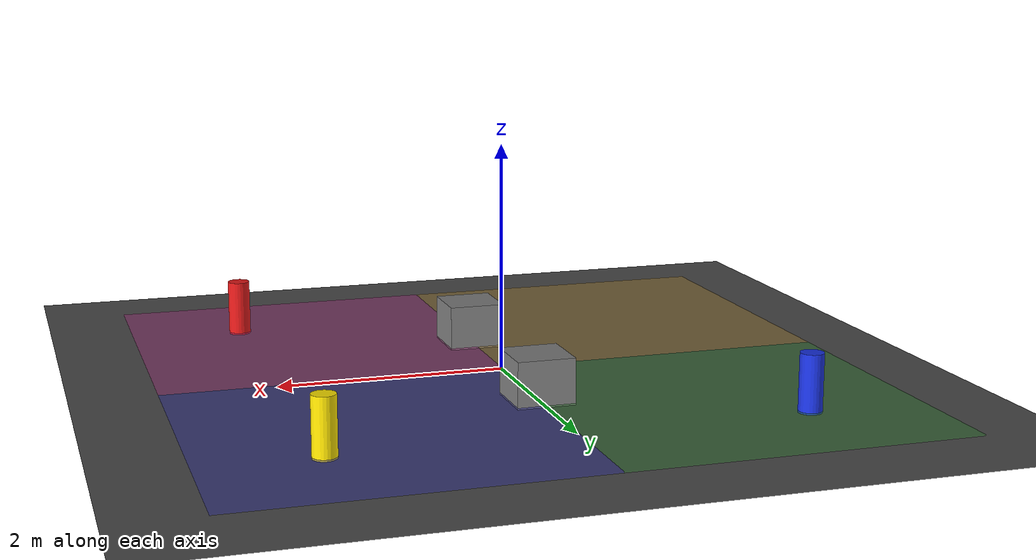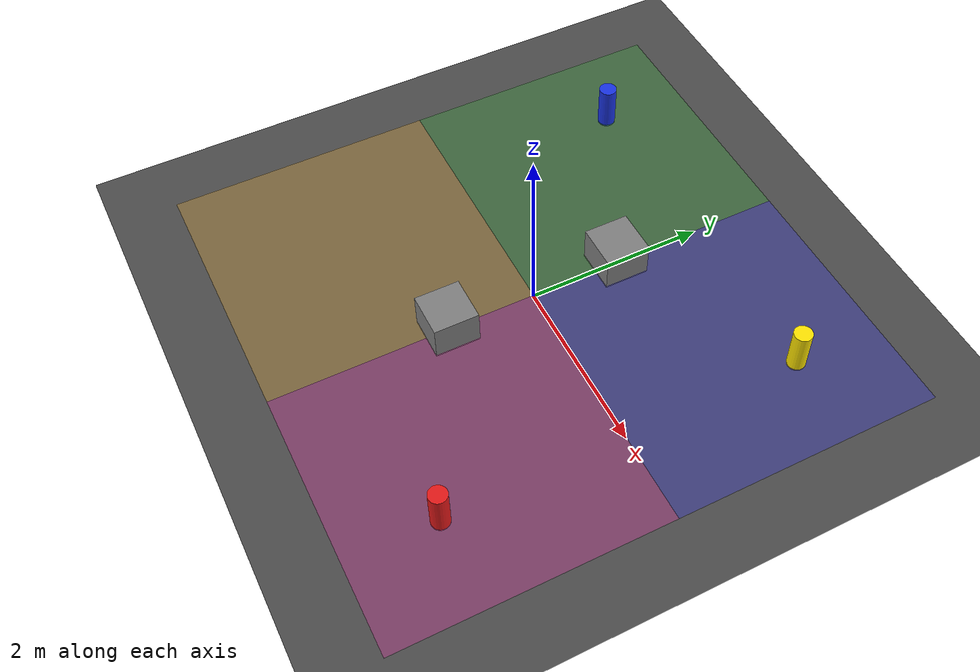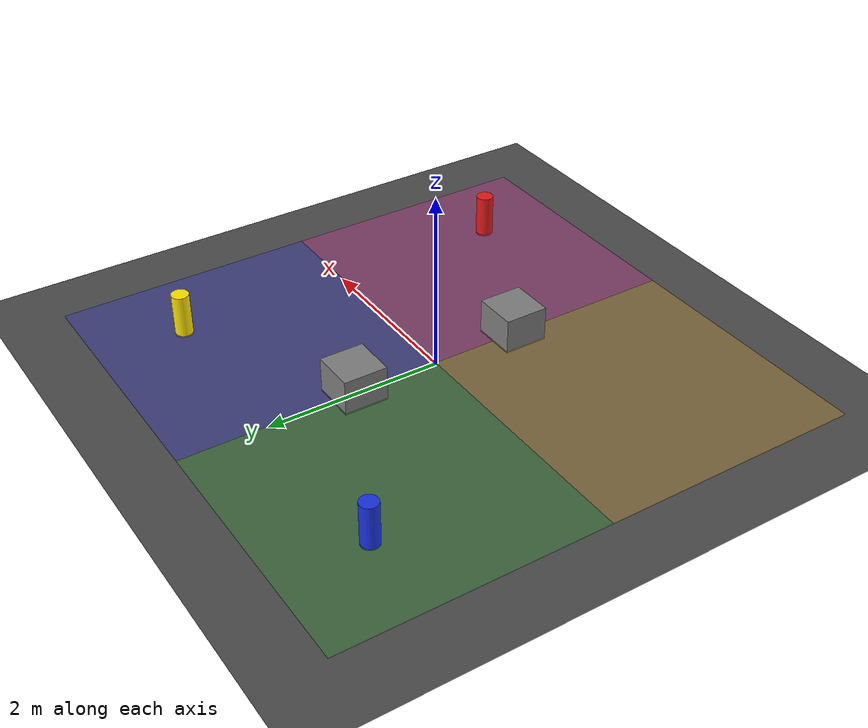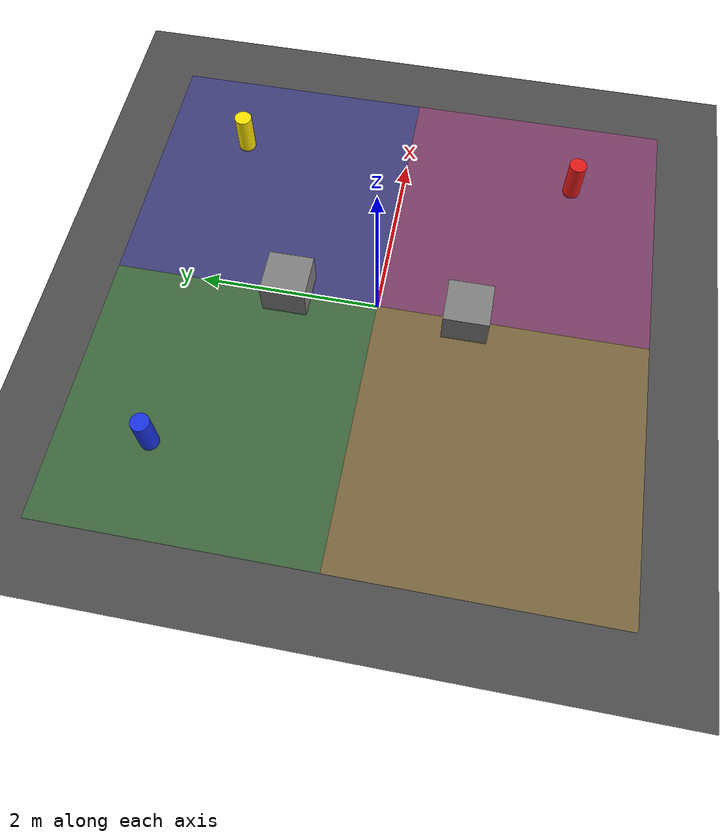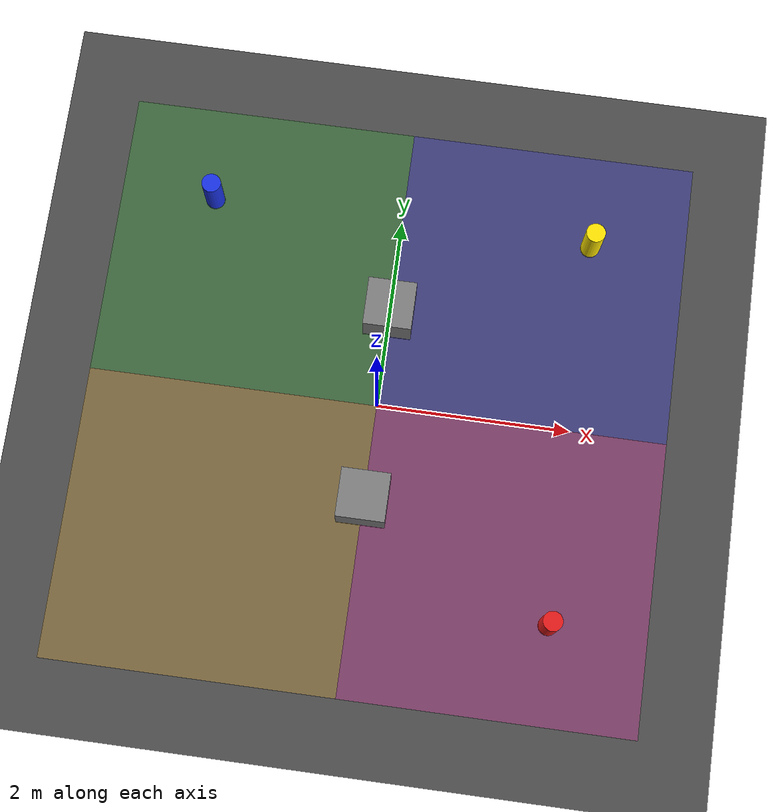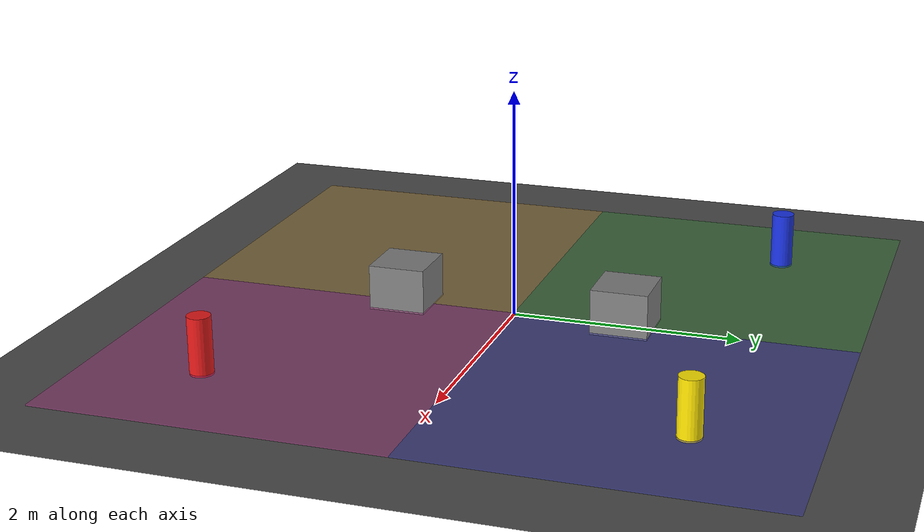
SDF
<?xml version="1.0" ?>
<sdf version="1.9" xmlns:experimental="http://sdformat.org/schemas/experimental">
  <world name="nexus_arena">

    <!-- Physics -->
    <physics name="1ms" type="bullet-featherstone">
      <max_step_size>0.001</max_step_size>
      <real_time_factor>1.0</real_time_factor>
    </physics>

    <!-- Plugins -->
    <plugin filename="gz-sim-physics-system"
            name="gz::sim::systems::Physics"/>
    <plugin filename="gz-sim-scene-broadcaster-system"
            name="gz::sim::systems::SceneBroadcaster"/>
    <plugin filename="gz-sim-user-commands-system"
            name="gz::sim::systems::UserCommands"/>
    <plugin filename="gz-sim-sensors-system"
            name="gz::sim::systems::Sensors">
      <render_engine>ogre2</render_engine>
    </plugin>

    <!-- Ground plane -->
    <model name="ground_plane">
      <static>true</static>
      <link name="link">
        <collision name="collision">
          <geometry><plane><normal>0 0 1</normal><size>20 20</size></plane></geometry>
        </collision>
        <visual name="visual">
          <geometry><plane><normal>0 0 1</normal><size>20 20</size></plane></geometry>
          <material>
            <ambient>0.3 0.3 0.3 1</ambient>
            <diffuse>0.3 0.3 0.3 1</diffuse>
          </material>
        </visual>
      </link>
    </model>

    <!-- ── ZONE FLOORS 6x6m arena ── -->
    <model name="zone_A">
      <static>true</static><pose>-1.5 1.5 0.01 0 0 0</pose>
      <link name="link">
        <visual name="v">
          <geometry><box><size>3 3 0.01</size></box></geometry>
          <material><ambient>0.2 0.6 0.2 0.4</ambient><diffuse>0.2 0.6 0.2 0.4</diffuse></material>
        </visual>
      </link>
    </model>
    <model name="zone_B">
      <static>true</static><pose>1.5 1.5 0.01 0 0 0</pose>
      <link name="link">
        <visual name="v">
          <geometry><box><size>3 3 0.01</size></box></geometry>
          <material><ambient>0.2 0.2 0.8 0.4</ambient><diffuse>0.2 0.2 0.8 0.4</diffuse></material>
        </visual>
      </link>
    </model>
    <model name="zone_C">
      <static>true</static><pose>-1.5 -1.5 0.01 0 0 0</pose>
      <link name="link">
        <visual name="v">
          <geometry><box><size>3 3 0.01</size></box></geometry>
          <material><ambient>0.8 0.6 0.2 0.4</ambient><diffuse>0.8 0.6 0.2 0.4</diffuse></material>
        </visual>
      </link>
    </model>
    <model name="zone_D">
      <static>true</static><pose>1.5 -1.5 0.01 0 0 0</pose>
      <link name="link">
        <visual name="v">
          <geometry><box><size>3 3 0.01</size></box></geometry>
          <material><ambient>0.8 0.2 0.6 0.4</ambient><diffuse>0.8 0.2 0.6 0.4</diffuse></material>
        </visual>
      </link>
    </model>

    <!-- ── COLORED MARKERS (cylinders h=0.5m r=0.1m) ── -->
    <!-- Yellow — Zone B corner (EmbodiedGPT target) -->
    <model name="marker_yellow">
      <static>true</static><pose>2.0 2.0 0.25 0 0 0</pose>
      <link name="link">
        <collision name="col">
          <geometry><cylinder><radius>0.1</radius><length>0.5</length></cylinder></geometry>
        </collision>
        <visual name="vis">
          <geometry><cylinder><radius>0.1</radius><length>0.5</length></cylinder></geometry>
          <material>
            <ambient>1.0 0.9 0.0 1</ambient>
            <diffuse>1.0 0.9 0.0 1</diffuse>
            <emissive>0.4 0.3 0.0 1</emissive>
          </material>
        </visual>
      </link>
    </model>

    <!-- Red — Zone D corner -->
    <model name="marker_red">
      <static>true</static><pose>2.0 -2.0 0.25 0 0 0</pose>
      <link name="link">
        <collision name="col">
          <geometry><cylinder><radius>0.1</radius><length>0.5</length></cylinder></geometry>
        </collision>
        <visual name="vis">
          <geometry><cylinder><radius>0.1</radius><length>0.5</length></cylinder></geometry>
          <material>
            <ambient>0.9 0.1 0.1 1</ambient>
            <diffuse>0.9 0.1 0.1 1</diffuse>
            <emissive>0.4 0.0 0.0 1</emissive>
          </material>
        </visual>
      </link>
    </model>

    <!-- Blue — Zone A corner -->
    <model name="marker_blue">
      <static>true</static><pose>-2.0 2.0 0.25 0 0 0</pose>
      <link name="link">
        <collision name="col">
          <geometry><cylinder><radius>0.1</radius><length>0.5</length></cylinder></geometry>
        </collision>
        <visual name="vis">
          <geometry><cylinder><radius>0.1</radius><length>0.5</length></cylinder></geometry>
          <material>
            <ambient>0.1 0.2 0.9 1</ambient>
            <diffuse>0.1 0.2 0.9 1</diffuse>
            <emissive>0.0 0.0 0.4 1</emissive>
          </material>
        </visual>
      </link>
    </model>

    <!-- ── OBSTACLES (2 grey boxes, centre corridor) ── -->
    <model name="obstacle_1">
      <static>true</static><pose>0.0 1.0 0.2 0 0 0</pose>
      <link name="link">
        <collision name="col">
          <geometry><box><size>0.5 0.5 0.4</size></box></geometry>
        </collision>
        <visual name="vis">
          <geometry><box><size>0.5 0.5 0.4</size></box></geometry>
          <material><ambient>0.5 0.5 0.5 1</ambient><diffuse>0.5 0.5 0.5 1</diffuse></material>
        </visual>
      </link>
    </model>
    <model name="obstacle_2">
      <static>true</static><pose>0.0 -1.0 0.2 0 0 0</pose>
      <link name="link">
        <collision name="col">
          <geometry><box><size>0.5 0.5 0.4</size></box></geometry>
        </collision>
        <visual name="vis">
          <geometry><box><size>0.5 0.5 0.4</size></box></geometry>
          <material><ambient>0.5 0.5 0.5 1</ambient><diffuse>0.5 0.5 0.5 1</diffuse></material>
        </visual>
      </link>
    </model>

    <!-- Sun -->
    <light name="sun" type="directional">
      <pose>0 0 10 0 0 0</pose>
      <diffuse>0.9 0.9 0.9 1</diffuse>
      <specular>0.2 0.2 0.2 1</specular>
      <direction>-0.5 0.1 -0.9</direction>
    </light>

  </world>
</sdf>
